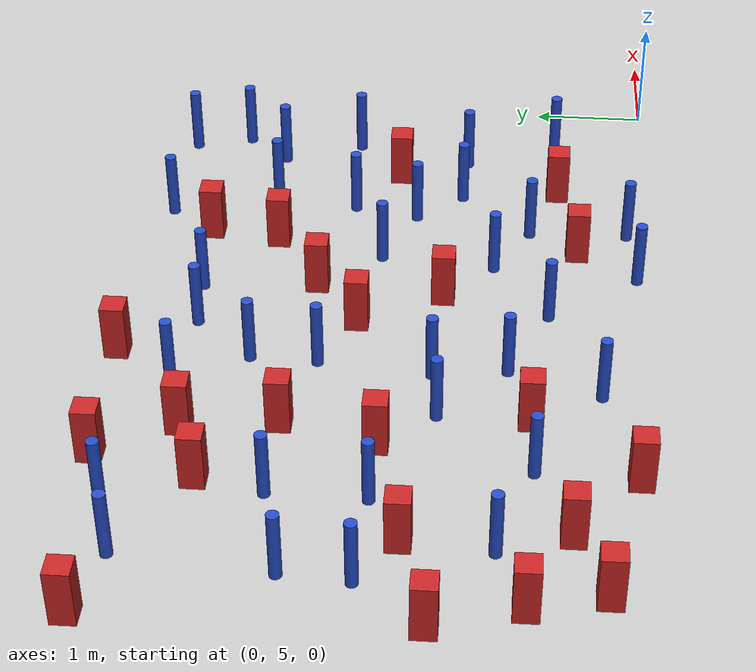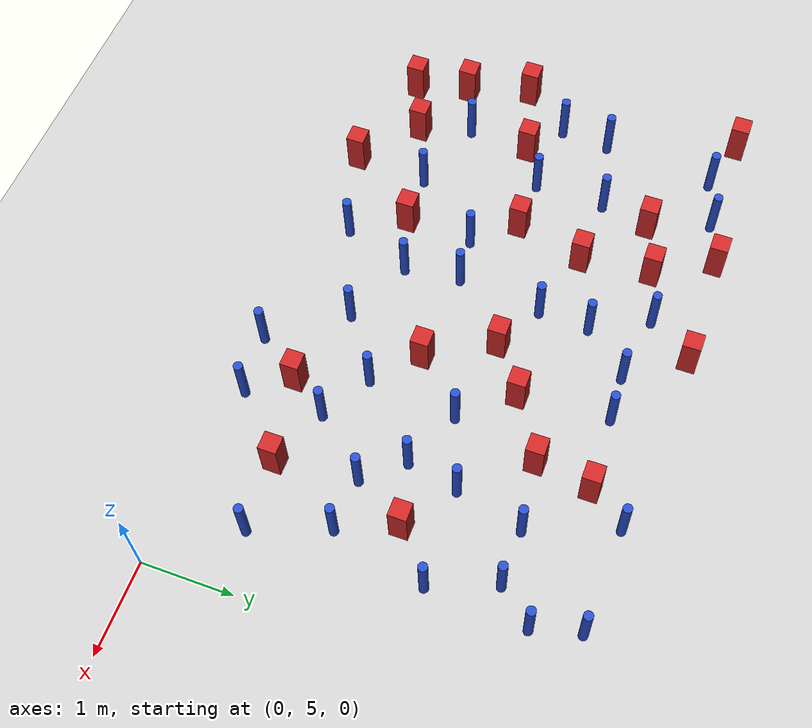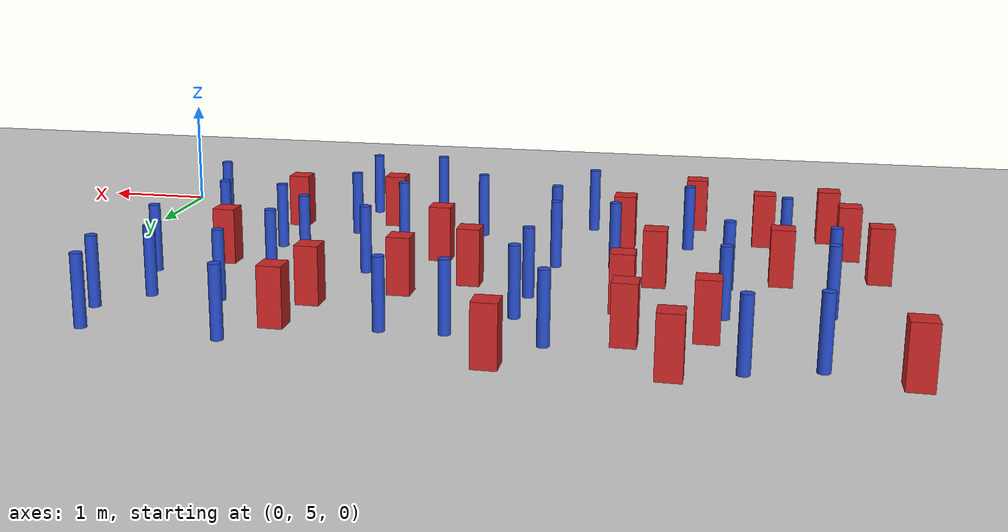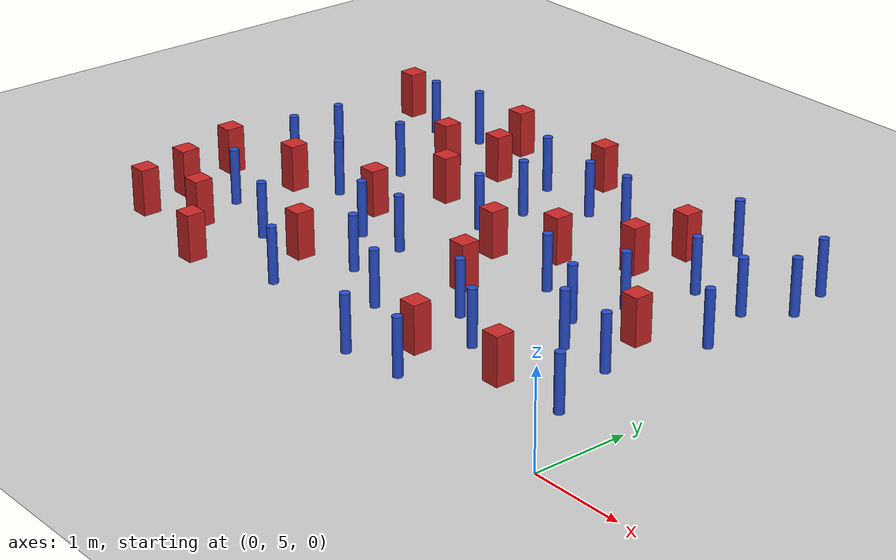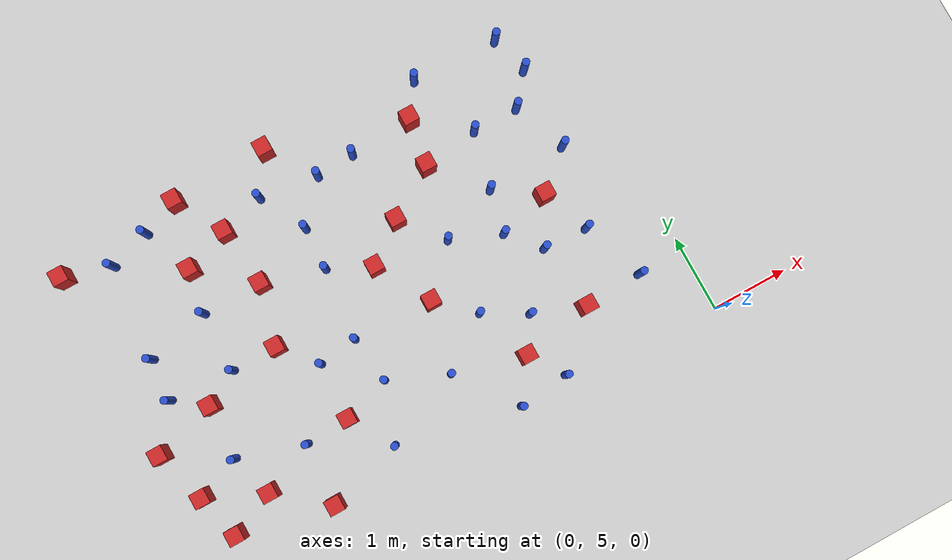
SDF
<sdf version="1.6">
 <world name="default">
  <model name="ground_plane">
   <static>1</static>
   <link name="link">
    <collision name="collision">
     <geometry><plane><normal>0 0 1</normal><size>100 100</size></plane></geometry>
     <surface><friction><ode><mu>100</mu><mu2>50</mu2></ode></friction></surface>
    </collision>
    <visual name="visual">
     <cast_shadows>0</cast_shadows>
     <geometry><plane><normal>0 0 1</normal><size>100 100</size></plane></geometry>
     <material>
      <ambient>1.0 1.0 1.0 1.0</ambient>
      <diffuse>0.8 0.8 0.8 1.0</diffuse>
      <specular>0.01 0.01 0.01 1.000000</specular>
     </material>
    </visual>
   </link>
  </model>
  <model name="pole_obstacle3">
   <static>true</static>
   <pose>-6.34380081487 9.1127951825 7.38925637345e-09 -8.471706928e-08 1.24976765081e-08 -1.74513093015e-07</pose>
   <link name="link">
    <pose>0 0 0.3 0 -0 0</pose>
    <inertial>
     <mass>1</mass>
     <inertia><ixx>0.145833</ixx><ixy>0</ixy><ixz>0</ixz><iyy>0.145833</iyy><iyz>0</iyz><izz>0.125</izz></inertia>
    </inertial>
    <collision name="collision">
     <geometry><cylinder><radius>0.05</radius><length>.6</length></cylinder></geometry>
    </collision>
    <visual name="visual">
     <geometry><cylinder><radius>0.05</radius><length>.6</length></cylinder></geometry>
     <material>
      <script><name>Gazebo/Blue</name><uri>file://media/materials/scripts/gazebo.material</uri></script>
     </material>
    </visual>
   </link>
  </model>
  <model name="square_post_obstacle7">
   <static>true</static>
   <pose>-5.04372002364 7.2401039024 1.91545236811e-07 -7.35059704564e-06 1.12565212e-07 2.39332434364e-05</pose>
   <link name="link">
    <pose>0 0 0.25 0 -0 0</pose>
    <inertial>
     <mass>100</mass>
     <inertia>
      <ixx>0.166667</ixx>
      <ixy>0</ixy>
      <ixz>0</ixz>
      <iyy>0.166667</iyy>
      <iyz>0</iyz>
      <izz>0.166667</izz>
     </inertia>
    </inertial>
    <collision name="collision"><geometry><box><size>.2 .2 .5</size></box></geometry></collision>
    <visual name="visual">
     <geometry><box><size>.2 .2 .5</size></box></geometry>
     <material>
      <script><name>Gazebo/Red</name><uri>file://media/materials/scripts/gazebo.material</uri></script>
     </material>
    </visual>
   </link>
  </model>
  <model name="pole_obstacle12">
   <static>true</static>
   <pose>-0.773788913742 9.30930106221 7.38925637345e-09 -8.47170692797e-08 1.249767648e-08 -1.74513093032e-07</pose>
   <link name="link">
    <pose>0 0 0.3 0 -0 0</pose>
    <inertial>
     <mass>1</mass>
     <inertia><ixx>0.145833</ixx><ixy>0</ixy><ixz>0</ixz><iyy>0.145833</iyy><iyz>0</iyz><izz>0.125</izz></inertia>
    </inertial>
    <collision name="collision">
     <geometry><cylinder><radius>0.05</radius><length>.6</length></cylinder></geometry>
    </collision>
    <visual name="visual">
     <geometry><cylinder><radius>0.05</radius><length>.6</length></cylinder></geometry>
     <material>
      <script><name>Gazebo/Blue</name><uri>file://media/materials/scripts/gazebo.material</uri></script>
     </material>
    </visual>
   </link>
  </model>
  <model name="square_post_obstacle8">
   <static>true</static>
   <pose>-3.99911726204 9.4823268455 1.91545236811e-07 -7.35059704564e-06 1.12565212e-07 2.39332434364e-05</pose>
   <link name="link">
    <pose>0 0 0.25 0 -0 0</pose>
    <inertial>
     <mass>100</mass>
     <inertia>
      <ixx>0.166667</ixx>
      <ixy>0</ixy>
      <ixz>0</ixz>
      <iyy>0.166667</iyy>
      <iyz>0</iyz>
      <izz>0.166667</izz>
     </inertia>
    </inertial>
    <collision name="collision"><geometry><box><size>.2 .2 .5</size></box></geometry></collision>
    <visual name="visual">
     <geometry><box><size>.2 .2 .5</size></box></geometry>
     <material>
      <script><name>Gazebo/Red</name><uri>file://media/materials/scripts/gazebo.material</uri></script>
     </material>
    </visual>
   </link>
  </model>
  <model name="square_post_obstacle9">
   <static>true</static>
   <pose>-3.08719825203 6.80727021895 1.91545236811e-07 -7.35059704564e-06 1.12565212e-07 2.39332434364e-05</pose>
   <link name="link">
    <pose>0 0 0.25 0 -0 0</pose>
    <inertial>
     <mass>100</mass>
     <inertia>
      <ixx>0.166667</ixx>
      <ixy>0</ixy>
      <ixz>0</ixz>
      <iyy>0.166667</iyy>
      <iyz>0</iyz>
      <izz>0.166667</izz>
     </inertia>
    </inertial>
    <collision name="collision"><geometry><box><size>.2 .2 .5</size></box></geometry></collision>
    <visual name="visual">
     <geometry><box><size>.2 .2 .5</size></box></geometry>
     <material>
      <script><name>Gazebo/Red</name><uri>file://media/materials/scripts/gazebo.material</uri></script>
     </material>
    </visual>
   </link>
  </model>
  <model name="square_post_obstacle11">
   <static>true</static>
   <pose>-5.33017767774 5.18398146413 1.91545236811e-07 -7.35059704564e-06 1.12565212e-07 2.39332434364e-05</pose>
   <link name="link">
    <pose>0 0 0.25 0 -0 0</pose>
    <inertial>
     <mass>100</mass>
     <inertia>
      <ixx>0.166667</ixx>
      <ixy>0</ixy>
      <ixz>0</ixz>
      <iyy>0.166667</iyy>
      <iyz>0</iyz>
      <izz>0.166667</izz>
     </inertia>
    </inertial>
    <collision name="collision"><geometry><box><size>.2 .2 .5</size></box></geometry></collision>
    <visual name="visual">
     <geometry><box><size>.2 .2 .5</size></box></geometry>
     <material>
      <script><name>Gazebo/Red</name><uri>file://media/materials/scripts/gazebo.material</uri></script>
     </material>
    </visual>
   </link>
  </model>
  <model name="pole_obstacle16">
   <static>true</static>
   <pose>-4.66239703517 6.7866188203 7.38925637345e-09 -8.47170692796e-08 1.24976764786e-08 -1.74513093032e-07</pose>
   <link name="link">
    <pose>0 0 0.3 0 -0 0</pose>
    <inertial>
     <mass>1</mass>
     <inertia><ixx>0.145833</ixx><ixy>0</ixy><ixz>0</ixz><iyy>0.145833</iyy><iyz>0</iyz><izz>0.125</izz></inertia>
    </inertial>
    <collision name="collision">
     <geometry><cylinder><radius>0.05</radius><length>.6</length></cylinder></geometry>
    </collision>
    <visual name="visual">
     <geometry><cylinder><radius>0.05</radius><length>.6</length></cylinder></geometry>
     <material>
      <script><name>Gazebo/Blue</name><uri>file://media/materials/scripts/gazebo.material</uri></script>
     </material>
    </visual>
   </link>
  </model>
  <model name="pole_obstacle29">
   <static>true</static>
   <pose>-4.06923669441 6.22673843874 7.38925637345e-09 -8.47170692796e-08 1.24976764786e-08 -1.74513093032e-07</pose>
   <link name="link">
    <pose>0 0 0.3 0 -0 0</pose>
    <inertial>
     <mass>1</mass>
     <inertia><ixx>0.145833</ixx><ixy>0</ixy><ixz>0</ixz><iyy>0.145833</iyy><iyz>0</iyz><izz>0.125</izz></inertia>
    </inertial>
    <collision name="collision">
     <geometry><cylinder><radius>0.05</radius><length>.6</length></cylinder></geometry>
    </collision>
    <visual name="visual">
     <geometry><cylinder><radius>0.05</radius><length>.6</length></cylinder></geometry>
     <material>
      <script><name>Gazebo/Blue</name><uri>file://media/materials/scripts/gazebo.material</uri></script>
     </material>
    </visual>
   </link>
  </model>
  <model name="pole_obstacle31">
   <static>true</static>
   <pose>-3.5647836449 8.87402375346 7.38925637345e-09 -8.47170692793e-08 1.24976764408e-08 -1.74513093041e-07</pose>
   <link name="link">
    <pose>0 0 0.3 0 -0 0</pose>
    <inertial>
     <mass>1</mass>
     <inertia><ixx>0.145833</ixx><ixy>0</ixy><ixz>0</ixz><iyy>0.145833</iyy><iyz>0</iyz><izz>0.125</izz></inertia>
    </inertial>
    <collision name="collision">
     <geometry><cylinder><radius>0.05</radius><length>.6</length></cylinder></geometry>
    </collision>
    <visual name="visual">
     <geometry><cylinder><radius>0.05</radius><length>.6</length></cylinder></geometry>
     <material>
      <script><name>Gazebo/Blue</name><uri>file://media/materials/scripts/gazebo.material</uri></script>
     </material>
    </visual>
   </link>
  </model>
  <model name="square_post_obstacle28">
   <static>true</static>
   <pose>-2.31667464635 8.32302824152 1.91545236811e-07 -7.35059704564e-06 1.12565212e-07 2.39332434364e-05</pose>
   <link name="link">
    <pose>0 0 0.25 0 -0 0</pose>
    <inertial>
     <mass>100</mass>
     <inertia>
      <ixx>0.166667</ixx>
      <ixy>0</ixy>
      <ixz>0</ixz>
      <iyy>0.166667</iyy>
      <iyz>0</iyz>
      <izz>0.166667</izz>
     </inertia>
    </inertial>
    <collision name="collision"><geometry><box><size>.2 .2 .5</size></box></geometry></collision>
    <visual name="visual">
     <geometry><box><size>.2 .2 .5</size></box></geometry>
     <material>
      <script><name>Gazebo/Red</name><uri>file://media/materials/scripts/gazebo.material</uri></script>
     </material>
    </visual>
   </link>
  </model>
  <model name="square_post_obstacle30">
   <static>true</static>
   <pose>-1.20396977914 7.28800247339 1.91545236811e-07 -7.35059704564e-06 1.12565212e-07 2.39332434364e-05</pose>
   <link name="link">
    <pose>0 0 0.25 0 -0 0</pose>
    <inertial>
     <mass>100</mass>
     <inertia>
      <ixx>0.166667</ixx>
      <ixy>0</ixy>
      <ixz>0</ixz>
      <iyy>0.166667</iyy>
      <iyz>0</iyz>
      <izz>0.166667</izz>
     </inertia>
    </inertial>
    <collision name="collision"><geometry><box><size>.2 .2 .5</size></box></geometry></collision>
    <visual name="visual">
     <geometry><box><size>.2 .2 .5</size></box></geometry>
     <material>
      <script><name>Gazebo/Red</name><uri>file://media/materials/scripts/gazebo.material</uri></script>
     </material>
    </visual>
   </link>
  </model>
  <model name="pole_obstacle38">
   <static>true</static>
   <pose>-5.28122120059 6.00140890133 7.38925637345e-09 -8.47170692796e-08 1.24976764786e-08 -1.74513093032e-07</pose>
   <link name="link">
    <pose>0 0 0.3 0 -0 0</pose>
    <inertial>
     <mass>1</mass>
     <inertia><ixx>0.145833</ixx><ixy>0</ixy><ixz>0</ixz><iyy>0.145833</iyy><iyz>0</iyz><izz>0.125</izz></inertia>
    </inertial>
    <collision name="collision">
     <geometry><cylinder><radius>0.05</radius><length>.6</length></cylinder></geometry>
    </collision>
    <visual name="visual">
     <geometry><cylinder><radius>0.05</radius><length>.6</length></cylinder></geometry>
     <material>
      <script><name>Gazebo/Blue</name><uri>file://media/materials/scripts/gazebo.material</uri></script>
     </material>
    </visual>
   </link>
  </model>
  <model name="square_post_obstacle32">
   <static>true</static>
   <pose>-4.92088573151 8.8116711996 1.91545236811e-07 -7.35059704564e-06 1.12565212e-07 2.39332434364e-05</pose>
   <link name="link">
    <pose>0 0 0.25 0 -0 0</pose>
    <inertial>
     <mass>100</mass>
     <inertia>
      <ixx>0.166667</ixx>
      <ixy>0</ixy>
      <ixz>0</ixz>
      <iyy>0.166667</iyy>
      <iyz>0</iyz>
      <izz>0.166667</izz>
     </inertia>
    </inertial>
    <collision name="collision"><geometry><box><size>.2 .2 .5</size></box></geometry></collision>
    <visual name="visual">
     <geometry><box><size>.2 .2 .5</size></box></geometry>
     <material>
      <script><name>Gazebo/Red</name><uri>file://media/materials/scripts/gazebo.material</uri></script>
     </material>
    </visual>
   </link>
  </model>
  <model name="pole_obstacle47">
   <static>true</static>
   <pose>-2.63119854094 6.38045834258 7.38925637345e-09 -8.47170692798e-08 1.24976765033e-08 -1.74513093019e-07</pose>
   <link name="link">
    <pose>0 0 0.3 0 -0 0</pose>
    <inertial>
     <mass>1</mass>
     <inertia><ixx>0.145833</ixx><ixy>0</ixy><ixz>0</ixz><iyy>0.145833</iyy><iyz>0</iyz><izz>0.125</izz></inertia>
    </inertial>
    <collision name="collision">
     <geometry><cylinder><radius>0.05</radius><length>.6</length></cylinder></geometry>
    </collision>
    <visual name="visual">
     <geometry><cylinder><radius>0.05</radius><length>.6</length></cylinder></geometry>
     <material>
      <script><name>Gazebo/Blue</name><uri>file://media/materials/scripts/gazebo.material</uri></script>
     </material>
    </visual>
   </link>
  </model>
  <model name="square_post_obstacle37">
   <static>true</static>
   <pose>-2.37740290144 5.64546545365 1.91545236811e-07 -7.35059704564e-06 1.12565212e-07 2.39332434364e-05</pose>
   <link name="link">
    <pose>0 0 0.25 0 -0 0</pose>
    <inertial>
     <mass>100</mass>
     <inertia>
      <ixx>0.166667</ixx>
      <ixy>0</ixy>
      <ixz>0</ixz>
      <iyy>0.166667</iyy>
      <iyz>0</iyz>
      <izz>0.166667</izz>
     </inertia>
    </inertial>
    <collision name="collision"><geometry><box><size>.2 .2 .5</size></box></geometry></collision>
    <visual name="visual">
     <geometry><box><size>.2 .2 .5</size></box></geometry>
     <material>
      <script><name>Gazebo/Red</name><uri>file://media/materials/scripts/gazebo.material</uri></script>
     </material>
    </visual>
   </link>
  </model>
  <model name="pole_obstacle50">
   <static>true</static>
   <pose>-6.15313237718 6.27757939052 7.38925637345e-09 -8.47170692796e-08 1.24976764786e-08 -1.74513093032e-07</pose>
   <link name="link">
    <pose>0 0 0.3 0 -0 0</pose>
    <inertial>
     <mass>1</mass>
     <inertia><ixx>0.145833</ixx><ixy>0</ixy><ixz>0</ixz><iyy>0.145833</iyy><iyz>0</iyz><izz>0.125</izz></inertia>
    </inertial>
    <collision name="collision">
     <geometry><cylinder><radius>0.05</radius><length>.6</length></cylinder></geometry>
    </collision>
    <visual name="visual">
     <geometry><cylinder><radius>0.05</radius><length>.6</length></cylinder></geometry>
     <material>
      <script><name>Gazebo/Blue</name><uri>file://media/materials/scripts/gazebo.material</uri></script>
     </material>
    </visual>
   </link>
  </model>
  <model name="pole_obstacle51">
   <static>true</static>
   <pose>-3.30831293314 5.8936043285 7.38925637345e-09 -8.47170692798e-08 1.24976765033e-08 -1.74513093019e-07</pose>
   <link name="link">
    <pose>0 0 0.3 0 -0 0</pose>
    <inertial>
     <mass>1</mass>
     <inertia><ixx>0.145833</ixx><ixy>0</ixy><ixz>0</ixz><iyy>0.145833</iyy><iyz>0</iyz><izz>0.125</izz></inertia>
    </inertial>
    <collision name="collision">
     <geometry><cylinder><radius>0.05</radius><length>.6</length></cylinder></geometry>
    </collision>
    <visual name="visual">
     <geometry><cylinder><radius>0.05</radius><length>.6</length></cylinder></geometry>
     <material>
      <script><name>Gazebo/Blue</name><uri>file://media/materials/scripts/gazebo.material</uri></script>
     </material>
    </visual>
   </link>
  </model>
  <model name="pole_obstacle59">
   <static>true</static>
   <pose>-4.14526312356 6.85190717606 7.38925637345e-09 -8.47170692796e-08 1.24976764786e-08 -1.74513093032e-07</pose>
   <link name="link">
    <pose>0 0 0.3 0 -0 0</pose>
    <inertial>
     <mass>1</mass>
     <inertia><ixx>0.145833</ixx><ixy>0</ixy><ixz>0</ixz><iyy>0.145833</iyy><iyz>0</iyz><izz>0.125</izz></inertia>
    </inertial>
    <collision name="collision">
     <geometry><cylinder><radius>0.05</radius><length>.6</length></cylinder></geometry>
    </collision>
    <visual name="visual">
     <geometry><cylinder><radius>0.05</radius><length>.6</length></cylinder></geometry>
     <material>
      <script><name>Gazebo/Blue</name><uri>file://media/materials/scripts/gazebo.material</uri></script>
     </material>
    </visual>
   </link>
  </model>
  <model name="pole_obstacle68">
   <static>true</static>
   <pose>-4.04206312793 7.80182128254 7.38925637345e-09 -8.47170692795e-08 1.24976764731e-08 -1.74513093035e-07</pose>
   <link name="link">
    <pose>0 0 0.3 0 -0 0</pose>
    <inertial>
     <mass>1</mass>
     <inertia><ixx>0.145833</ixx><ixy>0</ixy><ixz>0</ixz><iyy>0.145833</iyy><iyz>0</iyz><izz>0.125</izz></inertia>
    </inertial>
    <collision name="collision">
     <geometry><cylinder><radius>0.05</radius><length>.6</length></cylinder></geometry>
    </collision>
    <visual name="visual">
     <geometry><cylinder><radius>0.05</radius><length>.6</length></cylinder></geometry>
     <material>
      <script><name>Gazebo/Blue</name><uri>file://media/materials/scripts/gazebo.material</uri></script>
     </material>
    </visual>
   </link>
  </model>
  <model name="square_post_obstacle57">
   <static>true</static>
   <pose>-5.96850696449 5.70724786551 1.91545236811e-07 -7.35059704564e-06 1.12565212e-07 2.39332434364e-05</pose>
   <link name="link">
    <pose>0 0 0.25 0 -0 0</pose>
    <inertial>
     <mass>100</mass>
     <inertia>
      <ixx>0.166667</ixx>
      <ixy>0</ixy>
      <ixz>0</ixz>
      <iyy>0.166667</iyy>
      <iyz>0</iyz>
      <izz>0.166667</izz>
     </inertia>
    </inertial>
    <collision name="collision"><geometry><box><size>.2 .2 .5</size></box></geometry></collision>
    <visual name="visual">
     <geometry><box><size>.2 .2 .5</size></box></geometry>
     <material>
      <script><name>Gazebo/Red</name><uri>file://media/materials/scripts/gazebo.material</uri></script>
     </material>
    </visual>
   </link>
  </model>
  <model name="square_post_obstacle59">
   <static>true</static>
   <pose>-6.92673978967 6.75700090483 1.91545236811e-07 -7.35059704564e-06 1.12565212e-07 2.39332434364e-05</pose>
   <link name="link">
    <pose>0 0 0.25 0 -0 0</pose>
    <inertial>
     <mass>100</mass>
     <inertia>
      <ixx>0.166667</ixx>
      <ixy>0</ixy>
      <ixz>0</ixz>
      <iyy>0.166667</iyy>
      <iyz>0</iyz>
      <izz>0.166667</izz>
     </inertia>
    </inertial>
    <collision name="collision"><geometry><box><size>.2 .2 .5</size></box></geometry></collision>
    <visual name="visual">
     <geometry><box><size>.2 .2 .5</size></box></geometry>
     <material>
      <script><name>Gazebo/Red</name><uri>file://media/materials/scripts/gazebo.material</uri></script>
     </material>
    </visual>
   </link>
  </model>
  <model name="pole_obstacle73">
   <static>true</static>
   <pose>-3.05396963904 8.90393042775 7.38925637345e-09 -8.47170692793e-08 1.24976764408e-08 -1.74513093041e-07</pose>
   <link name="link">
    <pose>0 0 0.3 0 -0 0</pose>
    <inertial>
     <mass>1</mass>
     <inertia><ixx>0.145833</ixx><ixy>0</ixy><ixz>0</ixz><iyy>0.145833</iyy><iyz>0</iyz><izz>0.125</izz></inertia>
    </inertial>
    <collision name="collision">
     <geometry><cylinder><radius>0.05</radius><length>.6</length></cylinder></geometry>
    </collision>
    <visual name="visual">
     <geometry><cylinder><radius>0.05</radius><length>.6</length></cylinder></geometry>
     <material>
      <script><name>Gazebo/Blue</name><uri>file://media/materials/scripts/gazebo.material</uri></script>
     </material>
    </visual>
   </link>
  </model>
  <model name="square_post_obstacle66">
   <static>true</static>
   <pose>-5.2847926697 9.44872501741 1.91545236811e-07 -7.35059704564e-06 1.12565212e-07 2.39332434364e-05</pose>
   <link name="link">
    <pose>0 0 0.25 0 -0 0</pose>
    <inertial>
     <mass>100</mass>
     <inertia>
      <ixx>0.166667</ixx>
      <ixy>0</ixy>
      <ixz>0</ixz>
      <iyy>0.166667</iyy>
      <iyz>0</iyz>
      <izz>0.166667</izz>
     </inertia>
    </inertial>
    <collision name="collision"><geometry><box><size>.2 .2 .5</size></box></geometry></collision>
    <visual name="visual">
     <geometry><box><size>.2 .2 .5</size></box></geometry>
     <material>
      <script><name>Gazebo/Red</name><uri>file://media/materials/scripts/gazebo.material</uri></script>
     </material>
    </visual>
   </link>
  </model>
  <model name="pole_obstacle87">
   <static>true</static>
   <pose>-0.64563183628 5.84383848269 7.38925637345e-09 -8.471706928e-08 1.24976765086e-08 -1.74513093015e-07</pose>
   <link name="link">
    <pose>0 0 0.3 0 -0 0</pose>
    <inertial>
     <mass>1</mass>
     <inertia><ixx>0.145833</ixx><ixy>0</ixy><ixz>0</ixz><iyy>0.145833</iyy><iyz>0</iyz><izz>0.125</izz></inertia>
    </inertial>
    <collision name="collision">
     <geometry><cylinder><radius>0.05</radius><length>.6</length></cylinder></geometry>
    </collision>
    <visual name="visual">
     <geometry><cylinder><radius>0.05</radius><length>.6</length></cylinder></geometry>
     <material>
      <script><name>Gazebo/Blue</name><uri>file://media/materials/scripts/gazebo.material</uri></script>
     </material>
    </visual>
   </link>
  </model>
  <model name="pole_obstacle88">
   <static>true</static>
   <pose>-4.33698830204 8.98386595966 7.38925637345e-09 -8.471706928e-08 1.24976765081e-08 -1.74513093015e-07</pose>
   <link name="link">
    <pose>0 0 0.3 0 -0 0</pose>
    <inertial>
     <mass>1</mass>
     <inertia><ixx>0.145833</ixx><ixy>0</ixy><ixz>0</ixz><iyy>0.145833</iyy><iyz>0</iyz><izz>0.125</izz></inertia>
    </inertial>
    <collision name="collision">
     <geometry><cylinder><radius>0.05</radius><length>.6</length></cylinder></geometry>
    </collision>
    <visual name="visual">
     <geometry><cylinder><radius>0.05</radius><length>.6</length></cylinder></geometry>
     <material>
      <script><name>Gazebo/Blue</name><uri>file://media/materials/scripts/gazebo.material</uri></script>
     </material>
    </visual>
   </link>
  </model>
  <model name="pole_obstacle89">
   <static>true</static>
   <pose>-1.75531598838 7.67360440948 7.38925637345e-09 -8.47170692799e-08 1.24976765033e-08 -1.74513093018e-07</pose>
   <link name="link">
    <pose>0 0 0.3 0 -0 0</pose>
    <inertial>
     <mass>1</mass>
     <inertia><ixx>0.145833</ixx><ixy>0</ixy><ixz>0</ixz><iyy>0.145833</iyy><iyz>0</iyz><izz>0.125</izz></inertia>
    </inertial>
    <collision name="collision">
     <geometry><cylinder><radius>0.05</radius><length>.6</length></cylinder></geometry>
    </collision>
    <visual name="visual">
     <geometry><cylinder><radius>0.05</radius><length>.6</length></cylinder></geometry>
     <material>
      <script><name>Gazebo/Blue</name><uri>file://media/materials/scripts/gazebo.material</uri></script>
     </material>
    </visual>
   </link>
  </model>
  <model name="square_post_obstacle85">
   <static>true</static>
   <pose>-1.43005242936 5.81917018667 1.91545236811e-07 -7.35059704564e-06 1.12565212e-07 2.39332434364e-05</pose>
   <link name="link">
    <pose>0 0 0.25 0 -0 0</pose>
    <inertial>
     <mass>100</mass>
     <inertia>
      <ixx>0.166667</ixx>
      <ixy>0</ixy>
      <ixz>0</ixz>
      <iyy>0.166667</iyy>
      <iyz>0</iyz>
      <izz>0.166667</izz>
     </inertia>
    </inertial>
    <collision name="collision"><geometry><box><size>.2 .2 .5</size></box></geometry></collision>
    <visual name="visual">
     <geometry><box><size>.2 .2 .5</size></box></geometry>
     <material>
      <script><name>Gazebo/Red</name><uri>file://media/materials/scripts/gazebo.material</uri></script>
     </material>
    </visual>
   </link>
  </model>
  <model name="pole_obstacle94">
   <static>true</static>
   <pose>-1.91655074419 9.35443457782 7.38925637345e-09 -8.47170692798e-08 1.24976764881e-08 -1.74513093027e-07</pose>
   <link name="link">
    <pose>0 0 0.3 0 -0 0</pose>
    <inertial>
     <mass>1</mass>
     <inertia><ixx>0.145833</ixx><ixy>0</ixy><ixz>0</ixz><iyy>0.145833</iyy><iyz>0</iyz><izz>0.125</izz></inertia>
    </inertial>
    <collision name="collision">
     <geometry><cylinder><radius>0.05</radius><length>.6</length></cylinder></geometry>
    </collision>
    <visual name="visual">
     <geometry><cylinder><radius>0.05</radius><length>.6</length></cylinder></geometry>
     <material>
      <script><name>Gazebo/Blue</name><uri>file://media/materials/scripts/gazebo.material</uri></script>
     </material>
    </visual>
   </link>
  </model>
  <model name="pole_obstacle97">
   <static>true</static>
   <pose>-0.69675943563 7.71301858656 7.38925637345e-09 -8.471706928e-08 1.24976765086e-08 -1.74513093015e-07</pose>
   <link name="link">
    <pose>0 0 0.3 0 -0 0</pose>
    <inertial>
     <mass>1</mass>
     <inertia><ixx>0.145833</ixx><ixy>0</ixy><ixz>0</ixz><iyy>0.145833</iyy><iyz>0</iyz><izz>0.125</izz></inertia>
    </inertial>
    <collision name="collision">
     <geometry><cylinder><radius>0.05</radius><length>.6</length></cylinder></geometry>
    </collision>
    <visual name="visual">
     <geometry><cylinder><radius>0.05</radius><length>.6</length></cylinder></geometry>
     <material>
      <script><name>Gazebo/Blue</name><uri>file://media/materials/scripts/gazebo.material</uri></script>
     </material>
    </visual>
   </link>
  </model>
  <model name="pole_obstacle101">
   <static>true</static>
   <pose>-0.963703596042 8.41722523755 7.38925637345e-09 -8.47170692797e-08 1.24976764802e-08 -1.74513093032e-07</pose>
   <link name="link">
    <pose>0 0 0.3 0 -0 0</pose>
    <inertial>
     <mass>1</mass>
     <inertia><ixx>0.145833</ixx><ixy>0</ixy><ixz>0</ixz><iyy>0.145833</iyy><iyz>0</iyz><izz>0.125</izz></inertia>
    </inertial>
    <collision name="collision">
     <geometry><cylinder><radius>0.05</radius><length>.6</length></cylinder></geometry>
    </collision>
    <visual name="visual">
     <geometry><cylinder><radius>0.05</radius><length>.6</length></cylinder></geometry>
     <material>
      <script><name>Gazebo/Blue</name><uri>file://media/materials/scripts/gazebo.material</uri></script>
     </material>
    </visual>
   </link>
  </model>
  <model name="pole_obstacle105">
   <static>true</static>
   <pose>-1.56890744162 8.4195002272 7.38925637345e-09 -8.47170692798e-08 1.24976764881e-08 -1.74513093027e-07</pose>
   <link name="link">
    <pose>0 0 0.3 0 -0 0</pose>
    <inertial>
     <mass>1</mass>
     <inertia><ixx>0.145833</ixx><ixy>0</ixy><ixz>0</ixz><iyy>0.145833</iyy><iyz>0</iyz><izz>0.125</izz></inertia>
    </inertial>
    <collision name="collision">
     <geometry><cylinder><radius>0.05</radius><length>.6</length></cylinder></geometry>
    </collision>
    <visual name="visual">
     <geometry><cylinder><radius>0.05</radius><length>.6</length></cylinder></geometry>
     <material>
      <script><name>Gazebo/Blue</name><uri>file://media/materials/scripts/gazebo.material</uri></script>
     </material>
    </visual>
   </link>
  </model>
  <model name="pole_obstacle110">
   <static>true</static>
   <pose>-0.945643977947 6.66562458171 7.38925637345e-09 -8.471706928e-08 1.24976765086e-08 -1.74513093015e-07</pose>
   <link name="link">
    <pose>0 0 0.3 0 -0 0</pose>
    <inertial>
     <mass>1</mass>
     <inertia><ixx>0.145833</ixx><ixy>0</ixy><ixz>0</ixz><iyy>0.145833</iyy><iyz>0</iyz><izz>0.125</izz></inertia>
    </inertial>
    <collision name="collision">
     <geometry><cylinder><radius>0.05</radius><length>.6</length></cylinder></geometry>
    </collision>
    <visual name="visual">
     <geometry><cylinder><radius>0.05</radius><length>.6</length></cylinder></geometry>
     <material>
      <script><name>Gazebo/Blue</name><uri>file://media/materials/scripts/gazebo.material</uri></script>
     </material>
    </visual>
   </link>
  </model>
  <model name="square_post_obstacle127">
   <static>true</static>
   <pose>-6.95573679457 9.27972787724 1.91545236811e-07 -7.35059704564e-06 1.12565212e-07 2.39332434364e-05</pose>
   <link name="link">
    <pose>0 0 0.25 0 -0 0</pose>
    <inertial>
     <mass>100</mass>
     <inertia>
      <ixx>0.166667</ixx>
      <ixy>0</ixy>
      <ixz>0</ixz>
      <iyy>0.166667</iyy>
      <iyz>0</iyz>
      <izz>0.166667</izz>
     </inertia>
    </inertial>
    <collision name="collision"><geometry><box><size>.2 .2 .5</size></box></geometry></collision>
    <visual name="visual">
     <geometry><box><size>.2 .2 .5</size></box></geometry>
     <material>
      <script><name>Gazebo/Red</name><uri>file://media/materials/scripts/gazebo.material</uri></script>
     </material>
    </visual>
   </link>
  </model>
  <model name="pole_obstacle136">
   <static>true</static>
   <pose>-0.639604798522 8.79927496313 7.38925637345e-09 -8.47170692797e-08 1.249767648e-08 -1.74513093032e-07</pose>
   <link name="link">
    <pose>0 0 0.3 0 -0 0</pose>
    <inertial>
     <mass>1</mass>
     <inertia><ixx>0.145833</ixx><ixy>0</ixy><ixz>0</ixz><iyy>0.145833</iyy><iyz>0</iyz><izz>0.125</izz></inertia>
    </inertial>
    <collision name="collision">
     <geometry><cylinder><radius>0.05</radius><length>.6</length></cylinder></geometry>
    </collision>
    <visual name="visual">
     <geometry><cylinder><radius>0.05</radius><length>.6</length></cylinder></geometry>
     <material>
      <script><name>Gazebo/Blue</name><uri>file://media/materials/scripts/gazebo.material</uri></script>
     </material>
    </visual>
   </link>
  </model>
  <model name="square_post_obstacle136">
   <static>true</static>
   <pose>-4.69087795877 6.03484867262 1.91545236811e-07 -7.35059704564e-06 1.12565212e-07 2.39332434364e-05</pose>
   <link name="link">
    <pose>0 0 0.25 0 -0 0</pose>
    <inertial>
     <mass>100</mass>
     <inertia>
      <ixx>0.166667</ixx>
      <ixy>0</ixy>
      <ixz>0</ixz>
      <iyy>0.166667</iyy>
      <iyz>0</iyz>
      <izz>0.166667</izz>
     </inertia>
    </inertial>
    <collision name="collision"><geometry><box><size>.2 .2 .5</size></box></geometry></collision>
    <visual name="visual">
     <geometry><box><size>.2 .2 .5</size></box></geometry>
     <material>
      <script><name>Gazebo/Red</name><uri>file://media/materials/scripts/gazebo.material</uri></script>
     </material>
    </visual>
   </link>
  </model>
  <model name="pole_obstacle143">
   <static>true</static>
   <pose>-4.01723175827 8.36880835866 7.38925637345e-09 -8.47170692799e-08 1.24976765075e-08 -1.74513093015e-07</pose>
   <link name="link">
    <pose>0 0 0.3 0 -0 0</pose>
    <inertial>
     <mass>1</mass>
     <inertia><ixx>0.145833</ixx><ixy>0</ixy><ixz>0</ixz><iyy>0.145833</iyy><iyz>0</iyz><izz>0.125</izz></inertia>
    </inertial>
    <collision name="collision">
     <geometry><cylinder><radius>0.05</radius><length>.6</length></cylinder></geometry>
    </collision>
    <visual name="visual">
     <geometry><cylinder><radius>0.05</radius><length>.6</length></cylinder></geometry>
     <material>
      <script><name>Gazebo/Blue</name><uri>file://media/materials/scripts/gazebo.material</uri></script>
     </material>
    </visual>
   </link>
  </model>
  <model name="square_post_obstacle143">
   <static>true</static>
   <pose>-2.97717062789 7.90937949325 1.91545236811e-07 -7.35059704564e-06 1.12565212e-07 2.39332434364e-05</pose>
   <link name="link">
    <pose>0 0 0.25 0 -0 0</pose>
    <inertial>
     <mass>100</mass>
     <inertia>
      <ixx>0.166667</ixx>
      <ixy>0</ixy>
      <ixz>0</ixz>
      <iyy>0.166667</iyy>
      <iyz>0</iyz>
      <izz>0.166667</izz>
     </inertia>
    </inertial>
    <collision name="collision"><geometry><box><size>.2 .2 .5</size></box></geometry></collision>
    <visual name="visual">
     <geometry><box><size>.2 .2 .5</size></box></geometry>
     <material>
      <script><name>Gazebo/Red</name><uri>file://media/materials/scripts/gazebo.material</uri></script>
     </material>
    </visual>
   </link>
  </model>
  <model name="square_post_obstacle149">
   <static>true</static>
   <pose>-2.22038079432 8.93824735441 1.91545236811e-07 -7.35059704564e-06 1.12565212e-07 2.39332434364e-05</pose>
   <link name="link">
    <pose>0 0 0.25 0 -0 0</pose>
    <inertial>
     <mass>100</mass>
     <inertia>
      <ixx>0.166667</ixx>
      <ixy>0</ixy>
      <ixz>0</ixz>
      <iyy>0.166667</iyy>
      <iyz>0</iyz>
      <izz>0.166667</izz>
     </inertia>
    </inertial>
    <collision name="collision"><geometry><box><size>.2 .2 .5</size></box></geometry></collision>
    <visual name="visual">
     <geometry><box><size>.2 .2 .5</size></box></geometry>
     <material>
      <script><name>Gazebo/Red</name><uri>file://media/materials/scripts/gazebo.material</uri></script>
     </material>
    </visual>
   </link>
  </model>
  <model name="pole_obstacle154">
   <static>true</static>
   <pose>-1.52585428516 6.6959566169 7.38925637345e-09 -8.47170692799e-08 1.24976765033e-08 -1.74513093018e-07</pose>
   <link name="link">
    <pose>0 0 0.3 0 -0 0</pose>
    <inertial>
     <mass>1</mass>
     <inertia><ixx>0.145833</ixx><ixy>0</ixy><ixz>0</ixz><iyy>0.145833</iyy><iyz>0</iyz><izz>0.125</izz></inertia>
    </inertial>
    <collision name="collision">
     <geometry><cylinder><radius>0.05</radius><length>.6</length></cylinder></geometry>
    </collision>
    <visual name="visual">
     <geometry><cylinder><radius>0.05</radius><length>.6</length></cylinder></geometry>
     <material>
      <script><name>Gazebo/Blue</name><uri>file://media/materials/scripts/gazebo.material</uri></script>
     </material>
    </visual>
   </link>
  </model>
  <model name="square_post_obstacle164">
   <static>true</static>
   <pose>-6.71859051986 6.04931323349 1.91545236811e-07 -7.35059704564e-06 1.12565212e-07 2.39332434364e-05</pose>
   <link name="link">
    <pose>0 0 0.25 0 -0 0</pose>
    <inertial>
     <mass>100</mass>
     <inertia>
      <ixx>0.166667</ixx>
      <ixy>0</ixy>
      <ixz>0</ixz>
      <iyy>0.166667</iyy>
      <iyz>0</iyz>
      <izz>0.166667</izz>
     </inertia>
    </inertial>
    <collision name="collision"><geometry><box><size>.2 .2 .5</size></box></geometry></collision>
    <visual name="visual">
     <geometry><box><size>.2 .2 .5</size></box></geometry>
     <material>
      <script><name>Gazebo/Red</name><uri>file://media/materials/scripts/gazebo.material</uri></script>
     </material>
    </visual>
   </link>
  </model>
  <model name="pole_obstacle171">
   <static>true</static>
   <pose>-2.52862969044 7.37624789311 7.38925637345e-09 -8.47170692798e-08 1.24976765033e-08 -1.74513093019e-07</pose>
   <link name="link">
    <pose>0 0 0.3 0 -0 0</pose>
    <inertial>
     <mass>1</mass>
     <inertia><ixx>0.145833</ixx><ixy>0</ixy><ixz>0</ixz><iyy>0.145833</iyy><iyz>0</iyz><izz>0.125</izz></inertia>
    </inertial>
    <collision name="collision">
     <geometry><cylinder><radius>0.05</radius><length>.6</length></cylinder></geometry>
    </collision>
    <visual name="visual">
     <geometry><cylinder><radius>0.05</radius><length>.6</length></cylinder></geometry>
     <material>
      <script><name>Gazebo/Blue</name><uri>file://media/materials/scripts/gazebo.material</uri></script>
     </material>
    </visual>
   </link>
  </model>
  <model name="pole_obstacle172">
   <static>true</static>
   <pose>-4.34309979989 5.45808597157 7.38925637345e-09 -8.47170692796e-08 1.24976764786e-08 -1.74513093032e-07</pose>
   <link name="link">
    <pose>0 0 0.3 0 -0 0</pose>
    <inertial>
     <mass>1</mass>
     <inertia><ixx>0.145833</ixx><ixy>0</ixy><ixz>0</ixz><iyy>0.145833</iyy><iyz>0</iyz><izz>0.125</izz></inertia>
    </inertial>
    <collision name="collision">
     <geometry><cylinder><radius>0.05</radius><length>.6</length></cylinder></geometry>
    </collision>
    <visual name="visual">
     <geometry><cylinder><radius>0.05</radius><length>.6</length></cylinder></geometry>
     <material>
      <script><name>Gazebo/Blue</name><uri>file://media/materials/scripts/gazebo.material</uri></script>
     </material>
    </visual>
   </link>
  </model>
  <model name="square_post_obstacle176">
   <static>true</static>
   <pose>-4.83490434981 8.02560870856 1.91545236811e-07 -7.35059704564e-06 1.12565212e-07 2.39332434364e-05</pose>
   <link name="link">
    <pose>0 0 0.25 0 -0 0</pose>
    <inertial>
     <mass>100</mass>
     <inertia>
      <ixx>0.166667</ixx>
      <ixy>0</ixy>
      <ixz>0</ixz>
      <iyy>0.166667</iyy>
      <iyz>0</iyz>
      <izz>0.166667</izz>
     </inertia>
    </inertial>
    <collision name="collision"><geometry><box><size>.2 .2 .5</size></box></geometry></collision>
    <visual name="visual">
     <geometry><box><size>.2 .2 .5</size></box></geometry>
     <material>
      <script><name>Gazebo/Red</name><uri>file://media/materials/scripts/gazebo.material</uri></script>
     </material>
    </visual>
   </link>
  </model>
  <model name="square_post_obstacle181">
   <static>true</static>
   <pose>-3.4922632104 7.52150787831 1.91545236811e-07 -7.35059704564e-06 1.12565212e-07 2.39332434364e-05</pose>
   <link name="link">
    <pose>0 0 0.25 0 -0 0</pose>
    <inertial>
     <mass>100</mass>
     <inertia>
      <ixx>0.166667</ixx>
      <ixy>0</ixy>
      <ixz>0</ixz>
      <iyy>0.166667</iyy>
      <iyz>0</iyz>
      <izz>0.166667</izz>
     </inertia>
    </inertial>
    <collision name="collision"><geometry><box><size>.2 .2 .5</size></box></geometry></collision>
    <visual name="visual">
     <geometry><box><size>.2 .2 .5</size></box></geometry>
     <material>
      <script><name>Gazebo/Red</name><uri>file://media/materials/scripts/gazebo.material</uri></script>
     </material>
    </visual>
   </link>
  </model>
  <model name="pole_obstacle182">
   <static>true</static>
   <pose>-6.46968046227 7.85453087569 7.38925637345e-09 -8.47170692796e-08 1.24976764786e-08 -1.74513093032e-07</pose>
   <link name="link">
    <pose>0 0 0.3 0 -0 0</pose>
    <inertial>
     <mass>1</mass>
     <inertia><ixx>0.145833</ixx><ixy>0</ixy><ixz>0</ixz><iyy>0.145833</iyy><iyz>0</iyz><izz>0.125</izz></inertia>
    </inertial>
    <collision name="collision">
     <geometry><cylinder><radius>0.05</radius><length>.6</length></cylinder></geometry>
    </collision>
    <visual name="visual">
     <geometry><cylinder><radius>0.05</radius><length>.6</length></cylinder></geometry>
     <material>
      <script><name>Gazebo/Blue</name><uri>file://media/materials/scripts/gazebo.material</uri></script>
     </material>
    </visual>
   </link>
  </model>
  <model name="square_post_obstacle187">
   <static>true</static>
   <pose>-5.52016795612 8.59994553871 1.91545236811e-07 -7.35059704564e-06 1.12565212e-07 2.39332434364e-05</pose>
   <link name="link">
    <pose>0 0 0.25 0 -0 0</pose>
    <inertial>
     <mass>100</mass>
     <inertia>
      <ixx>0.166667</ixx>
      <ixy>0</ixy>
      <ixz>0</ixz>
      <iyy>0.166667</iyy>
      <iyz>0</iyz>
      <izz>0.166667</izz>
     </inertia>
    </inertial>
    <collision name="collision"><geometry><box><size>.2 .2 .5</size></box></geometry></collision>
    <visual name="visual">
     <geometry><box><size>.2 .2 .5</size></box></geometry>
     <material>
      <script><name>Gazebo/Red</name><uri>file://media/materials/scripts/gazebo.material</uri></script>
     </material>
    </visual>
   </link>
  </model>
  <model name="square_post_obstacle195">
   <static>true</static>
   <pose>-6.56704612181 5.4522493965 1.91545236811e-07 -7.35059704564e-06 1.12565212e-07 2.39332434364e-05</pose>
   <link name="link">
    <pose>0 0 0.25 0 -0 0</pose>
    <inertial>
     <mass>100</mass>
     <inertia>
      <ixx>0.166667</ixx>
      <ixy>0</ixy>
      <ixz>0</ixz>
      <iyy>0.166667</iyy>
      <iyz>0</iyz>
      <izz>0.166667</izz>
     </inertia>
    </inertial>
    <collision name="collision"><geometry><box><size>.2 .2 .5</size></box></geometry></collision>
    <visual name="visual">
     <geometry><box><size>.2 .2 .5</size></box></geometry>
     <material>
      <script><name>Gazebo/Red</name><uri>file://media/materials/scripts/gazebo.material</uri></script>
     </material>
    </visual>
   </link>
  </model>
  <model name="pole_obstacle188">
   <static>true</static>
   <pose>-2.06709388775 5.19152824936 7.38925637345e-09 -8.47170692798e-08 1.24976765033e-08 -1.74513093019e-07</pose>
   <link name="link">
    <pose>0 0 0.3 0 -0 0</pose>
    <inertial>
     <mass>1</mass>
     <inertia><ixx>0.145833</ixx><ixy>0</ixy><ixz>0</ixz><iyy>0.145833</iyy><iyz>0</iyz><izz>0.125</izz></inertia>
    </inertial>
    <collision name="collision">
     <geometry><cylinder><radius>0.05</radius><length>.6</length></cylinder></geometry>
    </collision>
    <visual name="visual">
     <geometry><cylinder><radius>0.05</radius><length>.6</length></cylinder></geometry>
     <material>
      <script><name>Gazebo/Blue</name><uri>file://media/materials/scripts/gazebo.material</uri></script>
     </material>
    </visual>
   </link>
  </model>
  <model name="pole_obstacle191">
   <static>true</static>
   <pose>-2.73610949281 5.11914665928 7.38925637345e-09 -8.47170692798e-08 1.24976765033e-08 -1.74513093019e-07</pose>
   <link name="link">
    <pose>0 0 0.3 0 -0 0</pose>
    <inertial>
     <mass>1</mass>
     <inertia><ixx>0.145833</ixx><ixy>0</ixy><ixz>0</ixz><iyy>0.145833</iyy><iyz>0</iyz><izz>0.125</izz></inertia>
    </inertial>
    <collision name="collision">
     <geometry><cylinder><radius>0.05</radius><length>.6</length></cylinder></geometry>
    </collision>
    <visual name="visual">
     <geometry><cylinder><radius>0.05</radius><length>.6</length></cylinder></geometry>
     <material>
      <script><name>Gazebo/Blue</name><uri>file://media/materials/scripts/gazebo.material</uri></script>
     </material>
    </visual>
   </link>
  </model>
  <model name="pole_obstacle195">
   <static>true</static>
   <pose>-1.87620757489 7.10378867435 7.38925637345e-09 -8.47170692799e-08 1.24976765033e-08 -1.74513093018e-07</pose>
   <link name="link">
    <pose>0 0 0.3 0 -0 0</pose>
    <inertial>
     <mass>1</mass>
     <inertia><ixx>0.145833</ixx><ixy>0</ixy><ixz>0</ixz><iyy>0.145833</iyy><iyz>0</iyz><izz>0.125</izz></inertia>
    </inertial>
    <collision name="collision">
     <geometry><cylinder><radius>0.05</radius><length>.6</length></cylinder></geometry>
    </collision>
    <visual name="visual">
     <geometry><cylinder><radius>0.05</radius><length>.6</length></cylinder></geometry>
     <material>
      <script><name>Gazebo/Blue</name><uri>file://media/materials/scripts/gazebo.material</uri></script>
     </material>
    </visual>
   </link>
  </model>
  <model name="pole_obstacle200">
   <static>true</static>
   <pose>-6.51417464688 7.29864825901 7.38925637345e-09 -8.47170692796e-08 1.24976764786e-08 -1.74513093032e-07</pose>
   <link name="link">
    <pose>0 0 0.3 0 -0 0</pose>
    <inertial>
     <mass>1</mass>
     <inertia><ixx>0.145833</ixx><ixy>0</ixy><ixz>0</ixz><iyy>0.145833</iyy><iyz>0</iyz><izz>0.125</izz></inertia>
    </inertial>
    <collision name="collision">
     <geometry><cylinder><radius>0.05</radius><length>.6</length></cylinder></geometry>
    </collision>
    <visual name="visual">
     <geometry><cylinder><radius>0.05</radius><length>.6</length></cylinder></geometry>
     <material>
      <script><name>Gazebo/Blue</name><uri>file://media/materials/scripts/gazebo.material</uri></script>
     </material>
    </visual>
   </link>
  </model>
  <model name="pole_obstacle206">
   <static>true</static>
   <pose>-5.79017328596 9.27553711919 7.38925637345e-09 -8.471706928e-08 1.24976765081e-08 -1.74513093015e-07</pose>
   <link name="link">
    <pose>0 0 0.3 0 -0 0</pose>
    <inertial>
     <mass>1</mass>
     <inertia><ixx>0.145833</ixx><ixy>0</ixy><ixz>0</ixz><iyy>0.145833</iyy><iyz>0</iyz><izz>0.125</izz></inertia>
    </inertial>
    <collision name="collision">
     <geometry><cylinder><radius>0.05</radius><length>.6</length></cylinder></geometry>
    </collision>
    <visual name="visual">
     <geometry><cylinder><radius>0.05</radius><length>.6</length></cylinder></geometry>
     <material>
      <script><name>Gazebo/Blue</name><uri>file://media/materials/scripts/gazebo.material</uri></script>
     </material>
    </visual>
   </link>
  </model>
  <model name="pole_obstacle213">
   <static>true</static>
   <pose>-5.63731584943 8.04598169148 7.38925637345e-09 -8.47170692797e-08 1.24976764908e-08 -1.74513093024e-07</pose>
   <link name="link">
    <pose>0 0 0.3 0 -0 0</pose>
    <inertial>
     <mass>1</mass>
     <inertia><ixx>0.145833</ixx><ixy>0</ixy><ixz>0</ixz><iyy>0.145833</iyy><iyz>0</iyz><izz>0.125</izz></inertia>
    </inertial>
    <collision name="collision">
     <geometry><cylinder><radius>0.05</radius><length>.6</length></cylinder></geometry>
    </collision>
    <visual name="visual">
     <geometry><cylinder><radius>0.05</radius><length>.6</length></cylinder></geometry>
     <material>
      <script><name>Gazebo/Blue</name><uri>file://media/materials/scripts/gazebo.material</uri></script>
     </material>
    </visual>
   </link>
  </model>
  <model name="pole_obstacle214">
   <static>true</static>
   <pose>-5.65587334685 7.24748396373 7.38925637345e-09 -8.47170692796e-08 1.24976764786e-08 -1.74513093032e-07</pose>
   <link name="link">
    <pose>0 0 0.3 0 -0 0</pose>
    <inertial>
     <mass>1</mass>
     <inertia><ixx>0.145833</ixx><ixy>0</ixy><ixz>0</ixz><iyy>0.145833</iyy><iyz>0</iyz><izz>0.125</izz></inertia>
    </inertial>
    <collision name="collision">
     <geometry><cylinder><radius>0.05</radius><length>.6</length></cylinder></geometry>
    </collision>
    <visual name="visual">
     <geometry><cylinder><radius>0.05</radius><length>.6</length></cylinder></geometry>
     <material>
      <script><name>Gazebo/Blue</name><uri>file://media/materials/scripts/gazebo.material</uri></script>
     </material>
    </visual>
   </link>
  </model>
  <model name="square_post_obstacle218">
   <static>true</static>
   <pose>-6.10060922388 6.9941225566 1.91545236811e-07 -7.35059704564e-06 1.12565212e-07 2.39332434364e-05</pose>
   <link name="link">
    <pose>0 0 0.25 0 -0 0</pose>
    <inertial>
     <mass>100</mass>
     <inertia>
      <ixx>0.166667</ixx>
      <ixy>0</ixy>
      <ixz>0</ixz>
      <iyy>0.166667</iyy>
      <iyz>0</iyz>
      <izz>0.166667</izz>
     </inertia>
    </inertial>
    <collision name="collision"><geometry><box><size>.2 .2 .5</size></box></geometry></collision>
    <visual name="visual">
     <geometry><box><size>.2 .2 .5</size></box></geometry>
     <material>
      <script><name>Gazebo/Red</name><uri>file://media/materials/scripts/gazebo.material</uri></script>
     </material>
    </visual>
   </link>
  </model>
  <model name="pole_obstacle223">
   <static>true</static>
   <pose>-2.08271999043 6.06764002078 7.38925637345e-09 -8.47170692798e-08 1.24976765033e-08 -1.74513093019e-07</pose>
   <link name="link">
    <pose>0 0 0.3 0 -0 0</pose>
    <inertial>
     <mass>1</mass>
     <inertia><ixx>0.145833</ixx><ixy>0</ixy><ixz>0</ixz><iyy>0.145833</iyy><iyz>0</iyz><izz>0.125</izz></inertia>
    </inertial>
    <collision name="collision">
     <geometry><cylinder><radius>0.05</radius><length>.6</length></cylinder></geometry>
    </collision>
    <visual name="visual">
     <geometry><cylinder><radius>0.05</radius><length>.6</length></cylinder></geometry>
     <material>
      <script><name>Gazebo/Blue</name><uri>file://media/materials/scripts/gazebo.material</uri></script>
     </material>
    </visual>
   </link>
  </model>
 </world>
</sdf>
